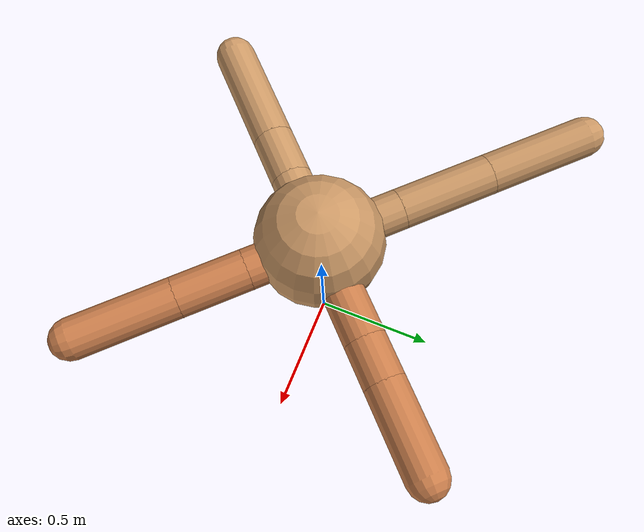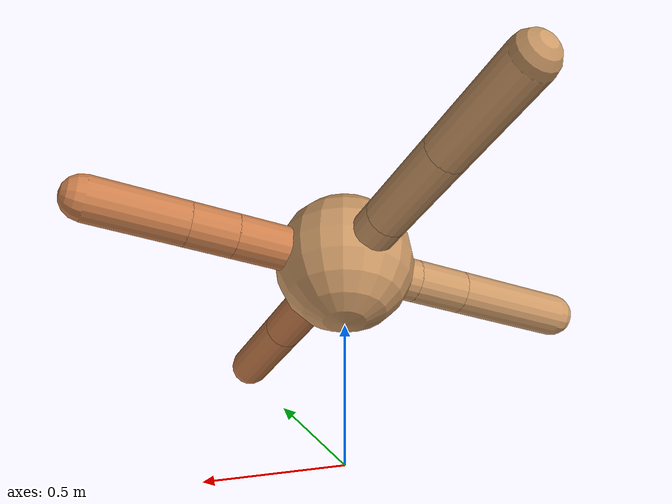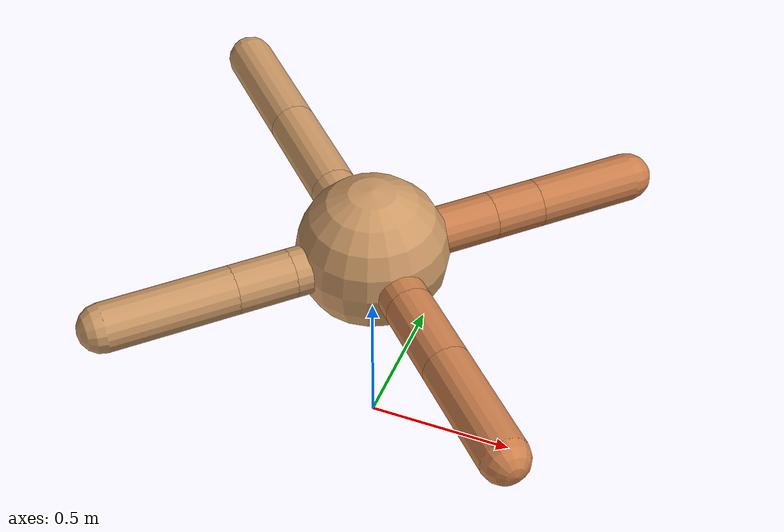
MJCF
<mujoco model="ant">
  <compiler angle="degree" coordinate="local" inertiafromgeom="true" />
  <option integrator="RK4" timestep="0.01" />
  <custom>
    <numeric data="0.0 0.0 0.55 1.0 0.0 0.0 0.0 0.0 1.0 0.0 -1.0 0.0 -1.0 0.0 1.0" name="init_qpos" />
  </custom>
  <default>
    <joint armature="1" damping="1" limited="true" />
    <geom conaffinity="0" condim="3" density="5.0" friction="1.5 0.1 0.1" margin="0.01" rgba="0.8 0.6 0.4 1" />
  </default>
  <worldbody>
    <body name="torso" pos="0 0 0.75">
      <geom name="torso_geom" pos="0 0 0" size="0.25" type="sphere" />

      <body name="front_left_leg" pos="0 0 0">
        <geom fromto="0.0 0.0 0.0 0.295708646649986 0.295708646649986 0.0" name="aux_1_geom" size="0.08" type="capsule" rgba=".8 .5 .3 1" />
        <body name="aux_1" pos="0.295708646649986 0.295708646649986 0.0">
          <joint axis="0 0 1" name="hip_1" pos="0.0 0.0 0.0" range="-40 40" type="hinge" />
          <geom fromto="0.0 0.0 0.0 0.11812453049774066 0.11812453049774066 0.0" name="left_leg_geom" size="0.08" type="capsule" rgba=".8 .5 .3 1" />
          <body pos="0.11812453049774066 0.11812453049774066 0.0" name="front_left_foot">
            <joint axis="-1 1 0" name="ankle_1" pos="0.0 0.0 0.0" range="30 100" type="hinge" />
            <geom fromto="0.0 0.0 0.0 0.2437051261208274 0.2437051261208274 0.0" name="left_ankle_geom" size="0.08" type="capsule" rgba=".8 .5 .3 1" />
          </body>
        </body>
      </body>
      <body name="front_right_leg" pos="0 0 0">
        <geom fromto="0.0 0.0 0.0 -0.2326773183923706 0.2326773183923706 0.0" name="aux_2_geom" size="0.08" type="capsule" />
        <body name="aux_2" pos="-0.2326773183923706 0.2326773183923706 0.0">
          <joint axis="0 0 1" name="hip_2" pos="0.0 0.0 0.0" range="-40 40" type="hinge" />
          <geom fromto="0.0 0.0 0.0 -0.26540784530993244 0.26540784530993244 0.0" name="right_leg_geom" size="0.08" type="capsule" />
          <body pos="-0.26540784530993244 0.26540784530993244 0.0" name="front_right_foot">
            <joint axis="1 1 0" name="ankle_2" pos="0.0 0.0 0.0" range="-100 -30" type="hinge" />
            <geom fromto="0.0 0.0 0.0 -0.3018648808048179 0.3018648808048179 0.0" name="right_ankle_geom" size="0.08" type="capsule" />
          </body>
        </body>
      </body>
      <body name="left_back_leg" pos="0 0 0">
        <geom fromto="0.0 0.0 0.0 -0.2 -0.2 0.0" name="aux_3_geom" size="0.08" type="capsule" />
        <body name="aux_3" pos="-0.2 -0.2 0.0">
          <joint axis="0 0 1" name="hip_3" pos="0.0 0.0 0.0" range="-40 40" type="hinge" />
          <geom fromto="0.0 0.0 0.0 -0.13655757865207344 -0.13655757865207344 0.0" name="back_leg_geom" size="0.08" type="capsule" />
          <body pos="-0.13655757865207344 -0.13655757865207344 0.0" name="left_back_foot">
            <joint axis="-1 1 0" name="ankle_3" pos="0.0 0.0 0.0" range="-100 -30" type="hinge" />
            <geom fromto="0.0 0.0 0.0 -0.3020760303065271 -0.3020760303065271 0.0" name="third_ankle_geom" size="0.08" type="capsule" />
          </body>
        </body>
      </body>
      <body name="right_back_leg" pos="0 0 0">
        <geom fromto="0.0 0.0 0.0 0.20613721484638514 -0.20613721484638514 0.0" name="aux_4_geom" size="0.08" type="capsule" rgba=".8 .5 .3 1" />
        <body name="aux_4" pos="0.20613721484638514 -0.20613721484638514 0.0">
          <joint axis="0 0 1" name="hip_4" pos="0.0 0.0 0.0" range="-40 40" type="hinge" />
          <geom fromto="0.0 0.0 0.0 0.19246750309630647 -0.19246750309630647 0.0" name="rightback_leg_geom" size="0.08" type="capsule" rgba=".8 .5 .3 1" />
          <body pos="0.19246750309630647 -0.19246750309630647 0.0" name="right_back_foot">
            <joint axis="1 1 0" name="ankle_4" pos="0.0 0.0 0.0" range="30 100" type="hinge" />
            <geom fromto="0.0 0.0 0.0 0.27803666616499784 -0.27803666616499784 0.0" name="fourth_ankle_geom" size="0.08" type="capsule" rgba=".8 .5 .3 1" />
          </body>
        </body>
      </body>
    </body>
  </worldbody>
  <actuator>
    <motor ctrllimited="true" ctrlrange="-1.0 1.0" joint="hip_4" gear="150" />
    <motor ctrllimited="true" ctrlrange="-1.0 1.0" joint="ankle_4" gear="150" />
    <motor ctrllimited="true" ctrlrange="-1.0 1.0" joint="hip_1" gear="150" />
    <motor ctrllimited="true" ctrlrange="-1.0 1.0" joint="ankle_1" gear="150" />
    <motor ctrllimited="true" ctrlrange="-1.0 1.0" joint="hip_2" gear="150" />
    <motor ctrllimited="true" ctrlrange="-1.0 1.0" joint="ankle_2" gear="150" />
    <motor ctrllimited="true" ctrlrange="-1.0 1.0" joint="hip_3" gear="150" />
    <motor ctrllimited="true" ctrlrange="-1.0 1.0" joint="ankle_3" gear="150" />
  </actuator>
</mujoco>
